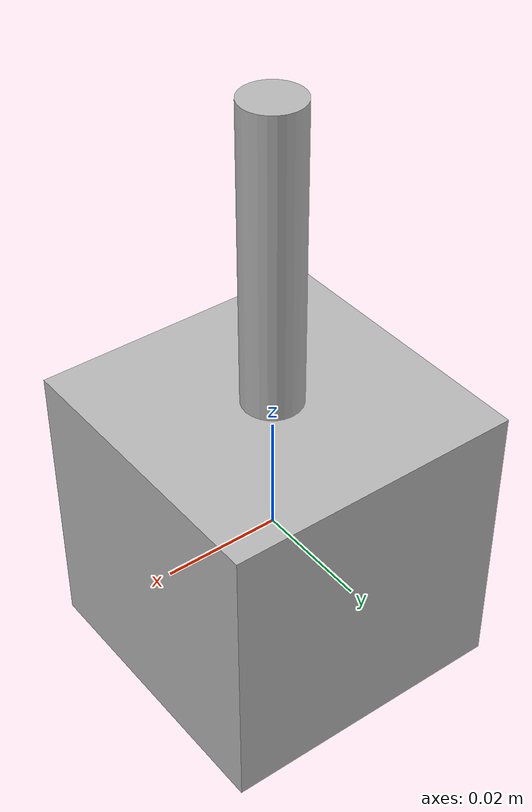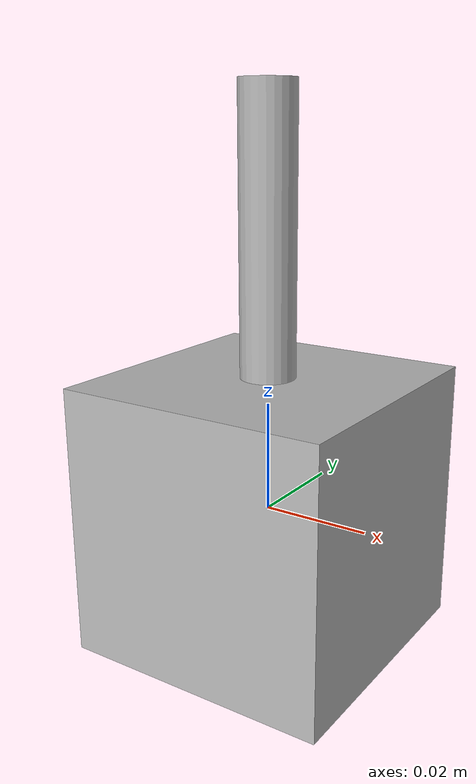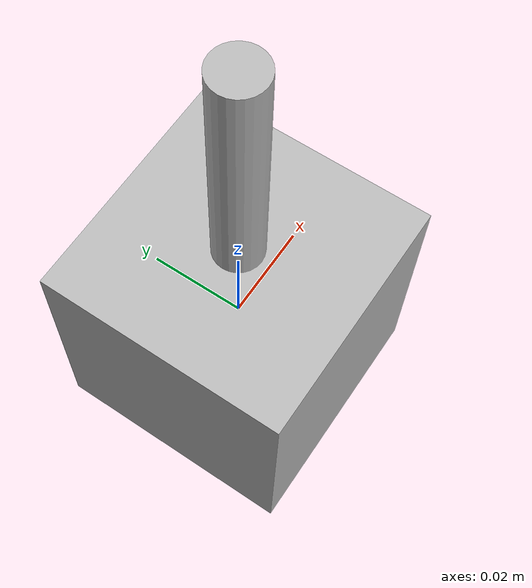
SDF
<?xml version="1.0" ?>
<sdf version="1.4">
  <model name="wirelessReceiver">
    <pose>0 0 0 0 0 0</pose>
    <link name="link">
      <inertial>
        <mass>0.1</mass>
      </inertial>

      <collision name='collision-base'>
        <geometry>
          <box>
            <size>.05 .05 .05</size>
          </box>
        </geometry>
      </collision>

      <collision name='collision-antenna'>
        <pose>0 0 .04 0 0 0</pose>
        <geometry>
          <cylinder>
            <radius>.005</radius>
            <length>.07</length>
          </cylinder>
        </geometry>
      </collision>

      <visual name="base">
        <geometry>
          <box>
            <size>.05 .05 .05</size>
          </box>
        </geometry>
      </visual>

      <visual name="antenna">
      <pose>0 0 .04 0 0 0</pose>
        <geometry>
          <cylinder>
            <radius>.005</radius>
            <length>.07</length>
          </cylinder>
        </geometry>
      </visual>

      <sensor name="wirelessReceiver" type="wireless_receiver">
        <always_on>1</always_on>
        <update_rate>1</update_rate>
        <visualize>true</visualize>
        <transceiver>
          <min_frequency>2412.0</min_frequency>
          <max_frequency>2484.0</max_frequency>
          <power>14.5</power>
          <gain>2.5</gain>
          <sensitivity>-90.0</sensitivity>
        </transceiver>
      </sensor>
    </link>
  </model>
</sdf>
